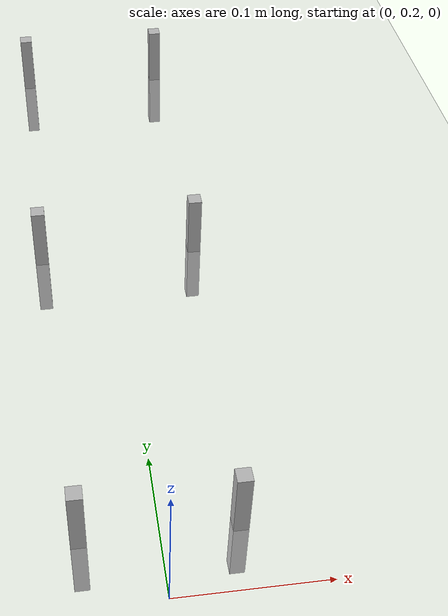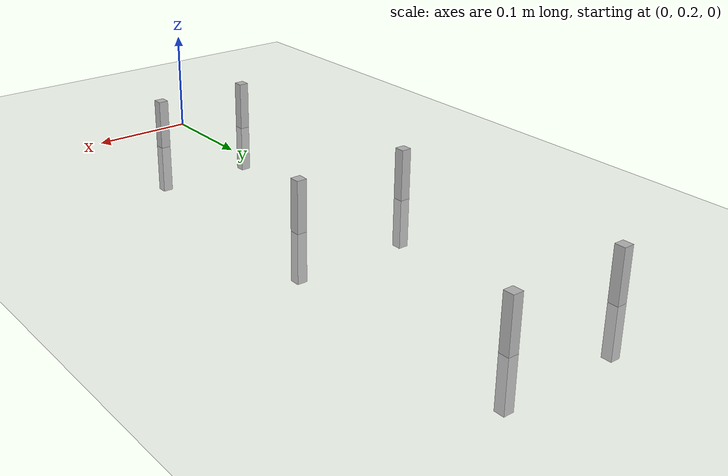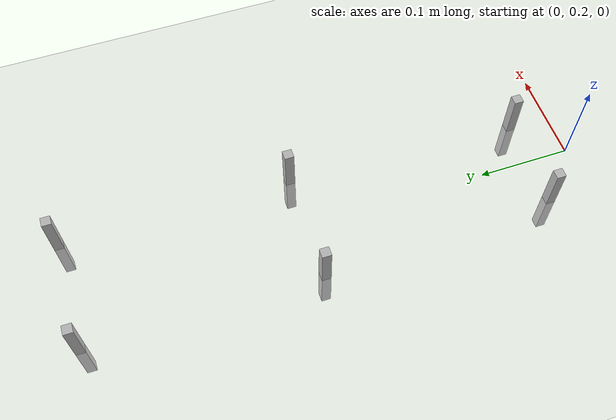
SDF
<sdf version="1.7">
 <world name="default">
  <light name="sun" type="directional">
   <pose>0 0 10 0 -0 0</pose>
   <diffuse>0.8 0.8 0.8 1</diffuse>
   <specular>0.2 0.2 0.2 1</specular>
   <attenuation>
    <range>1000</range>
    <constant>0.9</constant>
    <linear>0.01</linear>
    <quadratic>0.001</quadratic>
   </attenuation>
   <direction>-0.5 0.1 -0.9</direction>
   <spot><inner_angle>0</inner_angle><outer_angle>0</outer_angle><falloff>0</falloff></spot>
  </light>
  <model name="ground_plane">
   <static>1</static>
   <link name="link">
    <collision name="collision">
     <geometry><plane><normal>0 0 1</normal><size>100 100</size></plane></geometry>
     <surface>
      <contact><collide_bitmask>65535</collide_bitmask></contact>
      <friction><ode><mu>100</mu><mu2>50</mu2></ode></friction>
     </surface>
    </collision>
    <visual name="visual">
     <cast_shadows>0</cast_shadows>
     <geometry><plane><normal>0 0 1</normal><size>100 100</size></plane></geometry>
     <material>
      <script><uri>file://media/materials/scripts/gazebo.material</uri><name>Gazebo/Grey</name></script>
     </material>
    </visual>
   </link>
  </model>
  <gravity>0 0 -9.8</gravity>
  <magnetic_field>6e-06 2.3e-05 -4.2e-05</magnetic_field>
  <atmosphere type="adiabatic"/>
  <physics type="ode">
   <max_step_size>0.001</max_step_size>
   <real_time_factor>1</real_time_factor>
   <real_time_update_rate>1000</real_time_update_rate>
  </physics>
  <scene><ambient>0.4 0.4 0.4 1</ambient><background>0.7 0.7 0.7 1</background><shadows>1</shadows></scene>
  <audio><device>default</device></audio>
  <spherical_coordinates>
   <surface_model>EARTH_WGS84</surface_model>
   <latitude_deg>0</latitude_deg>
   <longitude_deg>0</longitude_deg>
   <elevation>0</elevation>
   <heading_deg>0</heading_deg>
  </spherical_coordinates>
  <model name="obstacle_1">
   <link name="base">
    <inertial>
     <mass>500</mass>
     <inertia>
      <ixx>0.0386667</ixx>
      <ixy>2.77556e-17</ixy>
      <ixz>0</ixz>
      <iyy>0.012</iyy>
      <iyz>0</iyz>
      <izz>0.0386667</izz>
     </inertia>
    </inertial>
    <collision name="base_fixed_joint_lump__obs_1_collision">
     <geometry><box><size>0.01 0.01 0.1</size></box></geometry>
    </collision>
    <visual name="base_fixed_joint_lump__obs_1_visual">
     <geometry><box><size>0.01 0.01 0.1</size></box></geometry>
    </visual>
   </link>
   <pose>0.05 0.245 0 0 -0 0</pose>
  </model>
  <model name="obstacle_2">
   <link name="base">
    <inertial>
     <mass>500</mass>
     <inertia>
      <ixx>0.0386667</ixx>
      <ixy>2.77556e-17</ixy>
      <ixz>0</ixz>
      <iyy>0.012</iyy>
      <iyz>0</iyz>
      <izz>0.0386667</izz>
     </inertia>
    </inertial>
    <collision name="base_fixed_joint_lump__obs_1_collision">
     <geometry><box><size>0.01 0.01 0.1</size></box></geometry>
    </collision>
    <visual name="base_fixed_joint_lump__obs_1_visual">
     <geometry><box><size>0.01 0.01 0.1</size></box></geometry>
    </visual>
   </link>
   <pose>-0.05 0.245 0 0 -0 0</pose>
  </model>
  <model name="obstacle_3">
   <link name="base">
    <inertial>
     <mass>500</mass>
     <inertia>
      <ixx>0.0386667</ixx>
      <ixy>2.77556e-17</ixy>
      <ixz>0</ixz>
      <iyy>0.012</iyy>
      <iyz>0</iyz>
      <izz>0.0386667</izz>
     </inertia>
    </inertial>
    <collision name="base_fixed_joint_lump__obs_1_collision">
     <geometry><box><size>0.01 0.01 0.1</size></box></geometry>
    </collision>
    <visual name="base_fixed_joint_lump__obs_1_visual">
     <geometry><box><size>0.01 0.01 0.1</size></box></geometry>
    </visual>
   </link>
   <pose>0.06 0.5 0 0 -0 0</pose>
  </model>
  <model name="obstacle_4">
   <link name="base">
    <inertial>
     <mass>500</mass>
     <inertia>
      <ixx>0.0386667</ixx>
      <ixy>2.77556e-17</ixy>
      <ixz>0</ixz>
      <iyy>0.012</iyy>
      <iyz>0</iyz>
      <izz>0.0386667</izz>
     </inertia>
    </inertial>
    <collision name="base_fixed_joint_lump__obs_1_collision">
     <geometry><box><size>0.01 0.01 0.1</size></box></geometry>
    </collision>
    <visual name="base_fixed_joint_lump__obs_1_visual">
     <geometry><box><size>0.01 0.01 0.1</size></box></geometry>
    </visual>
   </link>
   <pose>-0.06 0.5 0 0 -0 0</pose>
  </model>
  <model name="obstacle_5">
   <link name="base">
    <inertial>
     <mass>500</mass>
     <inertia>
      <ixx>0.0386667</ixx>
      <ixy>2.77556e-17</ixy>
      <ixz>0</ixz>
      <iyy>0.012</iyy>
      <iyz>0</iyz>
      <izz>0.0386667</izz>
     </inertia>
    </inertial>
    <collision name="base_fixed_joint_lump__obs_1_collision">
     <geometry><box><size>0.01 0.01 0.1</size></box></geometry>
    </collision>
    <visual name="base_fixed_joint_lump__obs_1_visual">
     <geometry><box><size>0.01 0.01 0.1</size></box></geometry>
    </visual>
   </link>
   <pose>0.06 0.75 0 0 -0 0</pose>
  </model>
  <model name="obstacle_6">
   <link name="base">
    <inertial>
     <mass>500</mass>
     <inertia>
      <ixx>0.0386667</ixx>
      <ixy>2.77556e-17</ixy>
      <ixz>0</ixz>
      <iyy>0.012</iyy>
      <iyz>0</iyz>
      <izz>0.0386667</izz>
     </inertia>
    </inertial>
    <collision name="base_fixed_joint_lump__obs_1_collision">
     <geometry><box><size>0.01 0.01 0.1</size></box></geometry>
    </collision>
    <visual name="base_fixed_joint_lump__obs_1_visual">
     <geometry><box><size>0.01 0.01 0.1</size></box></geometry>
    </visual>
   </link>
   <pose>-0.06 0.75 0 0 -0 0</pose>
  </model>
 </world>
</sdf>
